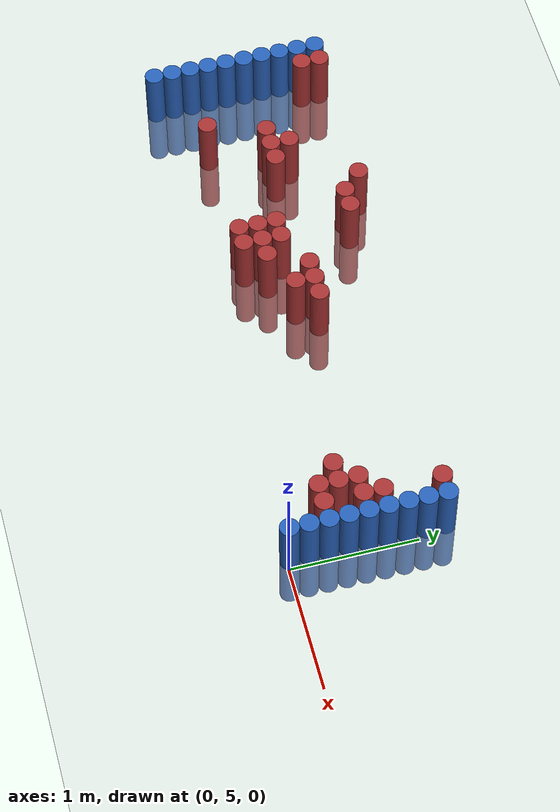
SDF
<sdf version="1.6">
 <world name="default">
  <model name="ground_plane">
   <static>1</static>
   <link name="link">
    <collision name="collision">
     <geometry><plane><normal>0 0 1</normal><size>100 100</size></plane></geometry>
     <surface><friction><ode><mu>100</mu><mu2>50</mu2></ode></friction></surface>
    </collision>
    <visual name="visual">
     <cast_shadows>0</cast_shadows>
     <geometry><plane><normal>0 0 1</normal><size>100 100</size></plane></geometry>
     <material>
      <script><uri>file://media/materials/scripts/gazebo.material</uri><name>Gazebo/Grey</name></script>
     </material>
    </visual>
   </link>
  </model>
  <model name="unit_cylinder_94">
   <static>1</static>
   <pose>-0.075000 5.025000 0.000000 0.000000 0.000000 0.000000</pose>
   <link name="link">
    <inertial>
     <mass>1</mass>
     <inertia><ixx>0.145833</ixx><ixy>0</ixy><ixz>0</ixz><iyy>0.145833</iyy><iyz>0</iyz><izz>0.125</izz></inertia>
    </inertial>
    <collision name="collision">
     <geometry><cylinder><radius>0.075000</radius><length>1</length></cylinder></geometry>
    </collision>
    <visual name="visual">
     <geometry><cylinder><radius>0.075000</radius><length>1</length></cylinder></geometry>
     <material>
      <ambient>0.152000 0.379000 0.720000 1</ambient>
      <diffuse>0.152000 0.379000 0.720000 1</diffuse>
     </material>
     <material>
      <script><name>Gazebo/Grey</name><uri>file://media/materials/scripts/gazebo.material</uri></script>
     </material>
    </visual>
   </link>
  </model>
  <model name="unit_cylinder_95">
   <static>1</static>
   <pose>-4.425000 5.025000 0.000000 0.000000 0.000000 0.000000</pose>
   <link name="link">
    <inertial>
     <mass>1</mass>
     <inertia><ixx>0.145833</ixx><ixy>0</ixy><ixz>0</ixz><iyy>0.145833</iyy><iyz>0</iyz><izz>0.125</izz></inertia>
    </inertial>
    <collision name="collision">
     <geometry><cylinder><radius>0.075000</radius><length>1</length></cylinder></geometry>
    </collision>
    <visual name="visual">
     <geometry><cylinder><radius>0.075000</radius><length>1</length></cylinder></geometry>
     <material>
      <ambient>0.152000 0.379000 0.720000 1</ambient>
      <diffuse>0.152000 0.379000 0.720000 1</diffuse>
     </material>
     <material>
      <script><name>Gazebo/Grey</name><uri>file://media/materials/scripts/gazebo.material</uri></script>
     </material>
    </visual>
   </link>
  </model>
  <model name="unit_cylinder_96">
   <static>1</static>
   <pose>-4.425000 5.175000 0.000000 0.000000 0.000000 0.000000</pose>
   <link name="link">
    <inertial>
     <mass>1</mass>
     <inertia><ixx>0.145833</ixx><ixy>0</ixy><ixz>0</ixz><iyy>0.145833</iyy><iyz>0</iyz><izz>0.125</izz></inertia>
    </inertial>
    <collision name="collision">
     <geometry><cylinder><radius>0.075000</radius><length>1</length></cylinder></geometry>
    </collision>
    <visual name="visual">
     <geometry><cylinder><radius>0.075000</radius><length>1</length></cylinder></geometry>
     <material>
      <ambient>0.152000 0.379000 0.720000 1</ambient>
      <diffuse>0.152000 0.379000 0.720000 1</diffuse>
     </material>
     <material>
      <script><name>Gazebo/Grey</name><uri>file://media/materials/scripts/gazebo.material</uri></script>
     </material>
    </visual>
   </link>
  </model>
  <model name="unit_cylinder_97">
   <static>1</static>
   <pose>-4.425000 5.325000 0.000000 0.000000 0.000000 0.000000</pose>
   <link name="link">
    <inertial>
     <mass>1</mass>
     <inertia><ixx>0.145833</ixx><ixy>0</ixy><ixz>0</ixz><iyy>0.145833</iyy><iyz>0</iyz><izz>0.125</izz></inertia>
    </inertial>
    <collision name="collision">
     <geometry><cylinder><radius>0.075000</radius><length>1</length></cylinder></geometry>
    </collision>
    <visual name="visual">
     <geometry><cylinder><radius>0.075000</radius><length>1</length></cylinder></geometry>
     <material>
      <ambient>0.152000 0.379000 0.720000 1</ambient>
      <diffuse>0.152000 0.379000 0.720000 1</diffuse>
     </material>
     <material>
      <script><name>Gazebo/Grey</name><uri>file://media/materials/scripts/gazebo.material</uri></script>
     </material>
    </visual>
   </link>
  </model>
  <model name="unit_cylinder_98">
   <static>1</static>
   <pose>-4.425000 5.475000 0.000000 0.000000 0.000000 0.000000</pose>
   <link name="link">
    <inertial>
     <mass>1</mass>
     <inertia><ixx>0.145833</ixx><ixy>0</ixy><ixz>0</ixz><iyy>0.145833</iyy><iyz>0</iyz><izz>0.125</izz></inertia>
    </inertial>
    <collision name="collision">
     <geometry><cylinder><radius>0.075000</radius><length>1</length></cylinder></geometry>
    </collision>
    <visual name="visual">
     <geometry><cylinder><radius>0.075000</radius><length>1</length></cylinder></geometry>
     <material>
      <ambient>0.152000 0.379000 0.720000 1</ambient>
      <diffuse>0.152000 0.379000 0.720000 1</diffuse>
     </material>
     <material>
      <script><name>Gazebo/Grey</name><uri>file://media/materials/scripts/gazebo.material</uri></script>
     </material>
    </visual>
   </link>
  </model>
  <model name="unit_cylinder_99">
   <static>1</static>
   <pose>-4.425000 5.625000 0.000000 0.000000 0.000000 0.000000</pose>
   <link name="link">
    <inertial>
     <mass>1</mass>
     <inertia><ixx>0.145833</ixx><ixy>0</ixy><ixz>0</ixz><iyy>0.145833</iyy><iyz>0</iyz><izz>0.125</izz></inertia>
    </inertial>
    <collision name="collision">
     <geometry><cylinder><radius>0.075000</radius><length>1</length></cylinder></geometry>
    </collision>
    <visual name="visual">
     <geometry><cylinder><radius>0.075000</radius><length>1</length></cylinder></geometry>
     <material>
      <ambient>0.152000 0.379000 0.720000 1</ambient>
      <diffuse>0.152000 0.379000 0.720000 1</diffuse>
     </material>
     <material>
      <script><name>Gazebo/Grey</name><uri>file://media/materials/scripts/gazebo.material</uri></script>
     </material>
    </visual>
   </link>
  </model>
  <model name="unit_cylinder_100">
   <static>1</static>
   <pose>-4.425000 5.775000 0.000000 0.000000 0.000000 0.000000</pose>
   <link name="link">
    <inertial>
     <mass>1</mass>
     <inertia><ixx>0.145833</ixx><ixy>0</ixy><ixz>0</ixz><iyy>0.145833</iyy><iyz>0</iyz><izz>0.125</izz></inertia>
    </inertial>
    <collision name="collision">
     <geometry><cylinder><radius>0.075000</radius><length>1</length></cylinder></geometry>
    </collision>
    <visual name="visual">
     <geometry><cylinder><radius>0.075000</radius><length>1</length></cylinder></geometry>
     <material>
      <ambient>0.152000 0.379000 0.720000 1</ambient>
      <diffuse>0.152000 0.379000 0.720000 1</diffuse>
     </material>
     <material>
      <script><name>Gazebo/Grey</name><uri>file://media/materials/scripts/gazebo.material</uri></script>
     </material>
    </visual>
   </link>
  </model>
  <model name="unit_cylinder_101">
   <static>1</static>
   <pose>-4.425000 5.925000 0.000000 0.000000 0.000000 0.000000</pose>
   <link name="link">
    <inertial>
     <mass>1</mass>
     <inertia><ixx>0.145833</ixx><ixy>0</ixy><ixz>0</ixz><iyy>0.145833</iyy><iyz>0</iyz><izz>0.125</izz></inertia>
    </inertial>
    <collision name="collision">
     <geometry><cylinder><radius>0.075000</radius><length>1</length></cylinder></geometry>
    </collision>
    <visual name="visual">
     <geometry><cylinder><radius>0.075000</radius><length>1</length></cylinder></geometry>
     <material>
      <ambient>0.152000 0.379000 0.720000 1</ambient>
      <diffuse>0.152000 0.379000 0.720000 1</diffuse>
     </material>
     <material>
      <script><name>Gazebo/Grey</name><uri>file://media/materials/scripts/gazebo.material</uri></script>
     </material>
    </visual>
   </link>
  </model>
  <model name="unit_cylinder_102">
   <static>1</static>
   <pose>-4.425000 6.075000 0.000000 0.000000 0.000000 0.000000</pose>
   <link name="link">
    <inertial>
     <mass>1</mass>
     <inertia><ixx>0.145833</ixx><ixy>0</ixy><ixz>0</ixz><iyy>0.145833</iyy><iyz>0</iyz><izz>0.125</izz></inertia>
    </inertial>
    <collision name="collision">
     <geometry><cylinder><radius>0.075000</radius><length>1</length></cylinder></geometry>
    </collision>
    <visual name="visual">
     <geometry><cylinder><radius>0.075000</radius><length>1</length></cylinder></geometry>
     <material>
      <ambient>0.152000 0.379000 0.720000 1</ambient>
      <diffuse>0.152000 0.379000 0.720000 1</diffuse>
     </material>
     <material>
      <script><name>Gazebo/Grey</name><uri>file://media/materials/scripts/gazebo.material</uri></script>
     </material>
    </visual>
   </link>
  </model>
  <model name="unit_cylinder_103">
   <static>1</static>
   <pose>-4.425000 6.225000 0.000000 0.000000 0.000000 0.000000</pose>
   <link name="link">
    <inertial>
     <mass>1</mass>
     <inertia><ixx>0.145833</ixx><ixy>0</ixy><ixz>0</ixz><iyy>0.145833</iyy><iyz>0</iyz><izz>0.125</izz></inertia>
    </inertial>
    <collision name="collision">
     <geometry><cylinder><radius>0.075000</radius><length>1</length></cylinder></geometry>
    </collision>
    <visual name="visual">
     <geometry><cylinder><radius>0.075000</radius><length>1</length></cylinder></geometry>
     <material>
      <ambient>0.152000 0.379000 0.720000 1</ambient>
      <diffuse>0.152000 0.379000 0.720000 1</diffuse>
     </material>
     <material>
      <script><name>Gazebo/Grey</name><uri>file://media/materials/scripts/gazebo.material</uri></script>
     </material>
    </visual>
   </link>
  </model>
  <model name="unit_cylinder_104">
   <static>1</static>
   <pose>-4.425000 6.375000 0.000000 0.000000 0.000000 0.000000</pose>
   <link name="link">
    <inertial>
     <mass>1</mass>
     <inertia><ixx>0.145833</ixx><ixy>0</ixy><ixz>0</ixz><iyy>0.145833</iyy><iyz>0</iyz><izz>0.125</izz></inertia>
    </inertial>
    <collision name="collision">
     <geometry><cylinder><radius>0.075000</radius><length>1</length></cylinder></geometry>
    </collision>
    <visual name="visual">
     <geometry><cylinder><radius>0.075000</radius><length>1</length></cylinder></geometry>
     <material>
      <ambient>0.152000 0.379000 0.720000 1</ambient>
      <diffuse>0.152000 0.379000 0.720000 1</diffuse>
     </material>
     <material>
      <script><name>Gazebo/Grey</name><uri>file://media/materials/scripts/gazebo.material</uri></script>
     </material>
    </visual>
   </link>
  </model>
  <model name="unit_cylinder_126">
   <static>1</static>
   <pose>-4.275000 6.225000 0.000000 0.000000 0.000000 0.000000</pose>
   <link name="link">
    <inertial>
     <mass>1</mass>
     <inertia><ixx>0.145833</ixx><ixy>0</ixy><ixz>0</ixz><iyy>0.145833</iyy><iyz>0</iyz><izz>0.125</izz></inertia>
    </inertial>
    <collision name="collision">
     <geometry><cylinder><radius>0.075000</radius><length>1</length></cylinder></geometry>
    </collision>
    <visual name="visual">
     <geometry><cylinder><radius>0.075000</radius><length>1</length></cylinder></geometry>
     <material>
      <ambient>0.648000 0.192000 0.192000 1</ambient>
      <diffuse>0.648000 0.192000 0.192000 1</diffuse>
     </material>
     <material>
      <script><name>Gazebo/Grey</name><uri>file://media/materials/scripts/gazebo.material</uri></script>
     </material>
    </visual>
   </link>
  </model>
  <model name="unit_cylinder_127">
   <static>1</static>
   <pose>-4.275000 6.375000 0.000000 0.000000 0.000000 0.000000</pose>
   <link name="link">
    <inertial>
     <mass>1</mass>
     <inertia><ixx>0.145833</ixx><ixy>0</ixy><ixz>0</ixz><iyy>0.145833</iyy><iyz>0</iyz><izz>0.125</izz></inertia>
    </inertial>
    <collision name="collision">
     <geometry><cylinder><radius>0.075000</radius><length>1</length></cylinder></geometry>
    </collision>
    <visual name="visual">
     <geometry><cylinder><radius>0.075000</radius><length>1</length></cylinder></geometry>
     <material>
      <ambient>0.648000 0.192000 0.192000 1</ambient>
      <diffuse>0.648000 0.192000 0.192000 1</diffuse>
     </material>
     <material>
      <script><name>Gazebo/Grey</name><uri>file://media/materials/scripts/gazebo.material</uri></script>
     </material>
    </visual>
   </link>
  </model>
  <model name="unit_cylinder_140">
   <static>1</static>
   <pose>-3.825000 5.325000 0.000000 0.000000 0.000000 0.000000</pose>
   <link name="link">
    <inertial>
     <mass>1</mass>
     <inertia><ixx>0.145833</ixx><ixy>0</ixy><ixz>0</ixz><iyy>0.145833</iyy><iyz>0</iyz><izz>0.125</izz></inertia>
    </inertial>
    <collision name="collision">
     <geometry><cylinder><radius>0.075000</radius><length>1</length></cylinder></geometry>
    </collision>
    <visual name="visual">
     <geometry><cylinder><radius>0.075000</radius><length>1</length></cylinder></geometry>
     <material>
      <ambient>0.648000 0.192000 0.192000 1</ambient>
      <diffuse>0.648000 0.192000 0.192000 1</diffuse>
     </material>
     <material>
      <script><name>Gazebo/Grey</name><uri>file://media/materials/scripts/gazebo.material</uri></script>
     </material>
    </visual>
   </link>
  </model>
  <model name="unit_cylinder_143">
   <static>1</static>
   <pose>-3.675000 5.775000 0.000000 0.000000 0.000000 0.000000</pose>
   <link name="link">
    <inertial>
     <mass>1</mass>
     <inertia><ixx>0.145833</ixx><ixy>0</ixy><ixz>0</ixz><iyy>0.145833</iyy><iyz>0</iyz><izz>0.125</izz></inertia>
    </inertial>
    <collision name="collision">
     <geometry><cylinder><radius>0.075000</radius><length>1</length></cylinder></geometry>
    </collision>
    <visual name="visual">
     <geometry><cylinder><radius>0.075000</radius><length>1</length></cylinder></geometry>
     <material>
      <ambient>0.648000 0.192000 0.192000 1</ambient>
      <diffuse>0.648000 0.192000 0.192000 1</diffuse>
     </material>
     <material>
      <script><name>Gazebo/Grey</name><uri>file://media/materials/scripts/gazebo.material</uri></script>
     </material>
    </visual>
   </link>
  </model>
  <model name="unit_cylinder_147">
   <static>1</static>
   <pose>-3.525000 5.775000 0.000000 0.000000 0.000000 0.000000</pose>
   <link name="link">
    <inertial>
     <mass>1</mass>
     <inertia><ixx>0.145833</ixx><ixy>0</ixy><ixz>0</ixz><iyy>0.145833</iyy><iyz>0</iyz><izz>0.125</izz></inertia>
    </inertial>
    <collision name="collision">
     <geometry><cylinder><radius>0.075000</radius><length>1</length></cylinder></geometry>
    </collision>
    <visual name="visual">
     <geometry><cylinder><radius>0.075000</radius><length>1</length></cylinder></geometry>
     <material>
      <ambient>0.648000 0.192000 0.192000 1</ambient>
      <diffuse>0.648000 0.192000 0.192000 1</diffuse>
     </material>
     <material>
      <script><name>Gazebo/Grey</name><uri>file://media/materials/scripts/gazebo.material</uri></script>
     </material>
    </visual>
   </link>
  </model>
  <model name="unit_cylinder_148">
   <static>1</static>
   <pose>-3.525000 5.925000 0.000000 0.000000 0.000000 0.000000</pose>
   <link name="link">
    <inertial>
     <mass>1</mass>
     <inertia><ixx>0.145833</ixx><ixy>0</ixy><ixz>0</ixz><iyy>0.145833</iyy><iyz>0</iyz><izz>0.125</izz></inertia>
    </inertial>
    <collision name="collision">
     <geometry><cylinder><radius>0.075000</radius><length>1</length></cylinder></geometry>
    </collision>
    <visual name="visual">
     <geometry><cylinder><radius>0.075000</radius><length>1</length></cylinder></geometry>
     <material>
      <ambient>0.648000 0.192000 0.192000 1</ambient>
      <diffuse>0.648000 0.192000 0.192000 1</diffuse>
     </material>
     <material>
      <script><name>Gazebo/Grey</name><uri>file://media/materials/scripts/gazebo.material</uri></script>
     </material>
    </visual>
   </link>
  </model>
  <model name="unit_cylinder_151">
   <static>1</static>
   <pose>-3.375000 5.775000 0.000000 0.000000 0.000000 0.000000</pose>
   <link name="link">
    <inertial>
     <mass>1</mass>
     <inertia><ixx>0.145833</ixx><ixy>0</ixy><ixz>0</ixz><iyy>0.145833</iyy><iyz>0</iyz><izz>0.125</izz></inertia>
    </inertial>
    <collision name="collision">
     <geometry><cylinder><radius>0.075000</radius><length>1</length></cylinder></geometry>
    </collision>
    <visual name="visual">
     <geometry><cylinder><radius>0.075000</radius><length>1</length></cylinder></geometry>
     <material>
      <ambient>0.648000 0.192000 0.192000 1</ambient>
      <diffuse>0.648000 0.192000 0.192000 1</diffuse>
     </material>
     <material>
      <script><name>Gazebo/Grey</name><uri>file://media/materials/scripts/gazebo.material</uri></script>
     </material>
    </visual>
   </link>
  </model>
  <model name="unit_cylinder_154">
   <static>1</static>
   <pose>-3.075000 6.375000 0.000000 0.000000 0.000000 0.000000</pose>
   <link name="link">
    <inertial>
     <mass>1</mass>
     <inertia><ixx>0.145833</ixx><ixy>0</ixy><ixz>0</ixz><iyy>0.145833</iyy><iyz>0</iyz><izz>0.125</izz></inertia>
    </inertial>
    <collision name="collision">
     <geometry><cylinder><radius>0.075000</radius><length>1</length></cylinder></geometry>
    </collision>
    <visual name="visual">
     <geometry><cylinder><radius>0.075000</radius><length>1</length></cylinder></geometry>
     <material>
      <ambient>0.648000 0.192000 0.192000 1</ambient>
      <diffuse>0.648000 0.192000 0.192000 1</diffuse>
     </material>
     <material>
      <script><name>Gazebo/Grey</name><uri>file://media/materials/scripts/gazebo.material</uri></script>
     </material>
    </visual>
   </link>
  </model>
  <model name="unit_cylinder_156">
   <static>1</static>
   <pose>-2.925000 6.225000 0.000000 0.000000 0.000000 0.000000</pose>
   <link name="link">
    <inertial>
     <mass>1</mass>
     <inertia><ixx>0.145833</ixx><ixy>0</ixy><ixz>0</ixz><iyy>0.145833</iyy><iyz>0</iyz><izz>0.125</izz></inertia>
    </inertial>
    <collision name="collision">
     <geometry><cylinder><radius>0.075000</radius><length>1</length></cylinder></geometry>
    </collision>
    <visual name="visual">
     <geometry><cylinder><radius>0.075000</radius><length>1</length></cylinder></geometry>
     <material>
      <ambient>0.648000 0.192000 0.192000 1</ambient>
      <diffuse>0.648000 0.192000 0.192000 1</diffuse>
     </material>
     <material>
      <script><name>Gazebo/Grey</name><uri>file://media/materials/scripts/gazebo.material</uri></script>
     </material>
    </visual>
   </link>
  </model>
  <model name="unit_cylinder_158">
   <static>1</static>
   <pose>-2.775000 5.325000 0.000000 0.000000 0.000000 0.000000</pose>
   <link name="link">
    <inertial>
     <mass>1</mass>
     <inertia><ixx>0.145833</ixx><ixy>0</ixy><ixz>0</ixz><iyy>0.145833</iyy><iyz>0</iyz><izz>0.125</izz></inertia>
    </inertial>
    <collision name="collision">
     <geometry><cylinder><radius>0.075000</radius><length>1</length></cylinder></geometry>
    </collision>
    <visual name="visual">
     <geometry><cylinder><radius>0.075000</radius><length>1</length></cylinder></geometry>
     <material>
      <ambient>0.648000 0.192000 0.192000 1</ambient>
      <diffuse>0.648000 0.192000 0.192000 1</diffuse>
     </material>
     <material>
      <script><name>Gazebo/Grey</name><uri>file://media/materials/scripts/gazebo.material</uri></script>
     </material>
    </visual>
   </link>
  </model>
  <model name="unit_cylinder_159">
   <static>1</static>
   <pose>-2.775000 5.475000 0.000000 0.000000 0.000000 0.000000</pose>
   <link name="link">
    <inertial>
     <mass>1</mass>
     <inertia><ixx>0.145833</ixx><ixy>0</ixy><ixz>0</ixz><iyy>0.145833</iyy><iyz>0</iyz><izz>0.125</izz></inertia>
    </inertial>
    <collision name="collision">
     <geometry><cylinder><radius>0.075000</radius><length>1</length></cylinder></geometry>
    </collision>
    <visual name="visual">
     <geometry><cylinder><radius>0.075000</radius><length>1</length></cylinder></geometry>
     <material>
      <ambient>0.648000 0.192000 0.192000 1</ambient>
      <diffuse>0.648000 0.192000 0.192000 1</diffuse>
     </material>
     <material>
      <script><name>Gazebo/Grey</name><uri>file://media/materials/scripts/gazebo.material</uri></script>
     </material>
    </visual>
   </link>
  </model>
  <model name="unit_cylinder_160">
   <static>1</static>
   <pose>-2.775000 5.625000 0.000000 0.000000 0.000000 0.000000</pose>
   <link name="link">
    <inertial>
     <mass>1</mass>
     <inertia><ixx>0.145833</ixx><ixy>0</ixy><ixz>0</ixz><iyy>0.145833</iyy><iyz>0</iyz><izz>0.125</izz></inertia>
    </inertial>
    <collision name="collision">
     <geometry><cylinder><radius>0.075000</radius><length>1</length></cylinder></geometry>
    </collision>
    <visual name="visual">
     <geometry><cylinder><radius>0.075000</radius><length>1</length></cylinder></geometry>
     <material>
      <ambient>0.648000 0.192000 0.192000 1</ambient>
      <diffuse>0.648000 0.192000 0.192000 1</diffuse>
     </material>
     <material>
      <script><name>Gazebo/Grey</name><uri>file://media/materials/scripts/gazebo.material</uri></script>
     </material>
    </visual>
   </link>
  </model>
  <model name="unit_cylinder_161">
   <static>1</static>
   <pose>-2.775000 6.225000 0.000000 0.000000 0.000000 0.000000</pose>
   <link name="link">
    <inertial>
     <mass>1</mass>
     <inertia><ixx>0.145833</ixx><ixy>0</ixy><ixz>0</ixz><iyy>0.145833</iyy><iyz>0</iyz><izz>0.125</izz></inertia>
    </inertial>
    <collision name="collision">
     <geometry><cylinder><radius>0.075000</radius><length>1</length></cylinder></geometry>
    </collision>
    <visual name="visual">
     <geometry><cylinder><radius>0.075000</radius><length>1</length></cylinder></geometry>
     <material>
      <ambient>0.648000 0.192000 0.192000 1</ambient>
      <diffuse>0.648000 0.192000 0.192000 1</diffuse>
     </material>
     <material>
      <script><name>Gazebo/Grey</name><uri>file://media/materials/scripts/gazebo.material</uri></script>
     </material>
    </visual>
   </link>
  </model>
  <model name="unit_cylinder_162">
   <static>1</static>
   <pose>-2.625000 5.325000 0.000000 0.000000 0.000000 0.000000</pose>
   <link name="link">
    <inertial>
     <mass>1</mass>
     <inertia><ixx>0.145833</ixx><ixy>0</ixy><ixz>0</ixz><iyy>0.145833</iyy><iyz>0</iyz><izz>0.125</izz></inertia>
    </inertial>
    <collision name="collision">
     <geometry><cylinder><radius>0.075000</radius><length>1</length></cylinder></geometry>
    </collision>
    <visual name="visual">
     <geometry><cylinder><radius>0.075000</radius><length>1</length></cylinder></geometry>
     <material>
      <ambient>0.648000 0.192000 0.192000 1</ambient>
      <diffuse>0.648000 0.192000 0.192000 1</diffuse>
     </material>
     <material>
      <script><name>Gazebo/Grey</name><uri>file://media/materials/scripts/gazebo.material</uri></script>
     </material>
    </visual>
   </link>
  </model>
  <model name="unit_cylinder_163">
   <static>1</static>
   <pose>-2.625000 5.475000 0.000000 0.000000 0.000000 0.000000</pose>
   <link name="link">
    <inertial>
     <mass>1</mass>
     <inertia><ixx>0.145833</ixx><ixy>0</ixy><ixz>0</ixz><iyy>0.145833</iyy><iyz>0</iyz><izz>0.125</izz></inertia>
    </inertial>
    <collision name="collision">
     <geometry><cylinder><radius>0.075000</radius><length>1</length></cylinder></geometry>
    </collision>
    <visual name="visual">
     <geometry><cylinder><radius>0.075000</radius><length>1</length></cylinder></geometry>
     <material>
      <ambient>0.648000 0.192000 0.192000 1</ambient>
      <diffuse>0.648000 0.192000 0.192000 1</diffuse>
     </material>
     <material>
      <script><name>Gazebo/Grey</name><uri>file://media/materials/scripts/gazebo.material</uri></script>
     </material>
    </visual>
   </link>
  </model>
  <model name="unit_cylinder_164">
   <static>1</static>
   <pose>-2.625000 5.625000 0.000000 0.000000 0.000000 0.000000</pose>
   <link name="link">
    <inertial>
     <mass>1</mass>
     <inertia><ixx>0.145833</ixx><ixy>0</ixy><ixz>0</ixz><iyy>0.145833</iyy><iyz>0</iyz><izz>0.125</izz></inertia>
    </inertial>
    <collision name="collision">
     <geometry><cylinder><radius>0.075000</radius><length>1</length></cylinder></geometry>
    </collision>
    <visual name="visual">
     <geometry><cylinder><radius>0.075000</radius><length>1</length></cylinder></geometry>
     <material>
      <ambient>0.648000 0.192000 0.192000 1</ambient>
      <diffuse>0.648000 0.192000 0.192000 1</diffuse>
     </material>
     <material>
      <script><name>Gazebo/Grey</name><uri>file://media/materials/scripts/gazebo.material</uri></script>
     </material>
    </visual>
   </link>
  </model>
  <model name="unit_cylinder_165">
   <static>1</static>
   <pose>-2.475000 5.475000 0.000000 0.000000 0.000000 0.000000</pose>
   <link name="link">
    <inertial>
     <mass>1</mass>
     <inertia><ixx>0.145833</ixx><ixy>0</ixy><ixz>0</ixz><iyy>0.145833</iyy><iyz>0</iyz><izz>0.125</izz></inertia>
    </inertial>
    <collision name="collision">
     <geometry><cylinder><radius>0.075000</radius><length>1</length></cylinder></geometry>
    </collision>
    <visual name="visual">
     <geometry><cylinder><radius>0.075000</radius><length>1</length></cylinder></geometry>
     <material>
      <ambient>0.648000 0.192000 0.192000 1</ambient>
      <diffuse>0.648000 0.192000 0.192000 1</diffuse>
     </material>
     <material>
      <script><name>Gazebo/Grey</name><uri>file://media/materials/scripts/gazebo.material</uri></script>
     </material>
    </visual>
   </link>
  </model>
  <model name="unit_cylinder_169">
   <static>1</static>
   <pose>-2.325000 5.775000 0.000000 0.000000 0.000000 0.000000</pose>
   <link name="link">
    <inertial>
     <mass>1</mass>
     <inertia><ixx>0.145833</ixx><ixy>0</ixy><ixz>0</ixz><iyy>0.145833</iyy><iyz>0</iyz><izz>0.125</izz></inertia>
    </inertial>
    <collision name="collision">
     <geometry><cylinder><radius>0.075000</radius><length>1</length></cylinder></geometry>
    </collision>
    <visual name="visual">
     <geometry><cylinder><radius>0.075000</radius><length>1</length></cylinder></geometry>
     <material>
      <ambient>0.648000 0.192000 0.192000 1</ambient>
      <diffuse>0.648000 0.192000 0.192000 1</diffuse>
     </material>
     <material>
      <script><name>Gazebo/Grey</name><uri>file://media/materials/scripts/gazebo.material</uri></script>
     </material>
    </visual>
   </link>
  </model>
  <model name="unit_cylinder_173">
   <static>1</static>
   <pose>-2.175000 5.625000 0.000000 0.000000 0.000000 0.000000</pose>
   <link name="link">
    <inertial>
     <mass>1</mass>
     <inertia><ixx>0.145833</ixx><ixy>0</ixy><ixz>0</ixz><iyy>0.145833</iyy><iyz>0</iyz><izz>0.125</izz></inertia>
    </inertial>
    <collision name="collision">
     <geometry><cylinder><radius>0.075000</radius><length>1</length></cylinder></geometry>
    </collision>
    <visual name="visual">
     <geometry><cylinder><radius>0.075000</radius><length>1</length></cylinder></geometry>
     <material>
      <ambient>0.648000 0.192000 0.192000 1</ambient>
      <diffuse>0.648000 0.192000 0.192000 1</diffuse>
     </material>
     <material>
      <script><name>Gazebo/Grey</name><uri>file://media/materials/scripts/gazebo.material</uri></script>
     </material>
    </visual>
   </link>
  </model>
  <model name="unit_cylinder_174">
   <static>1</static>
   <pose>-2.175000 5.775000 0.000000 0.000000 0.000000 0.000000</pose>
   <link name="link">
    <inertial>
     <mass>1</mass>
     <inertia><ixx>0.145833</ixx><ixy>0</ixy><ixz>0</ixz><iyy>0.145833</iyy><iyz>0</iyz><izz>0.125</izz></inertia>
    </inertial>
    <collision name="collision">
     <geometry><cylinder><radius>0.075000</radius><length>1</length></cylinder></geometry>
    </collision>
    <visual name="visual">
     <geometry><cylinder><radius>0.075000</radius><length>1</length></cylinder></geometry>
     <material>
      <ambient>0.648000 0.192000 0.192000 1</ambient>
      <diffuse>0.648000 0.192000 0.192000 1</diffuse>
     </material>
     <material>
      <script><name>Gazebo/Grey</name><uri>file://media/materials/scripts/gazebo.material</uri></script>
     </material>
    </visual>
   </link>
  </model>
  <model name="unit_cylinder_177">
   <static>1</static>
   <pose>-2.025000 5.775000 0.000000 0.000000 0.000000 0.000000</pose>
   <link name="link">
    <inertial>
     <mass>1</mass>
     <inertia><ixx>0.145833</ixx><ixy>0</ixy><ixz>0</ixz><iyy>0.145833</iyy><iyz>0</iyz><izz>0.125</izz></inertia>
    </inertial>
    <collision name="collision">
     <geometry><cylinder><radius>0.075000</radius><length>1</length></cylinder></geometry>
    </collision>
    <visual name="visual">
     <geometry><cylinder><radius>0.075000</radius><length>1</length></cylinder></geometry>
     <material>
      <ambient>0.648000 0.192000 0.192000 1</ambient>
      <diffuse>0.648000 0.192000 0.192000 1</diffuse>
     </material>
     <material>
      <script><name>Gazebo/Grey</name><uri>file://media/materials/scripts/gazebo.material</uri></script>
     </material>
    </visual>
   </link>
  </model>
  <model name="unit_cylinder_192">
   <static>1</static>
   <pose>-0.525000 5.475000 0.000000 0.000000 0.000000 0.000000</pose>
   <link name="link">
    <inertial>
     <mass>1</mass>
     <inertia><ixx>0.145833</ixx><ixy>0</ixy><ixz>0</ixz><iyy>0.145833</iyy><iyz>0</iyz><izz>0.125</izz></inertia>
    </inertial>
    <collision name="collision">
     <geometry><cylinder><radius>0.075000</radius><length>1</length></cylinder></geometry>
    </collision>
    <visual name="visual">
     <geometry><cylinder><radius>0.075000</radius><length>1</length></cylinder></geometry>
     <material>
      <ambient>0.648000 0.192000 0.192000 1</ambient>
      <diffuse>0.648000 0.192000 0.192000 1</diffuse>
     </material>
     <material>
      <script><name>Gazebo/Grey</name><uri>file://media/materials/scripts/gazebo.material</uri></script>
     </material>
    </visual>
   </link>
  </model>
  <model name="unit_cylinder_195">
   <static>1</static>
   <pose>-0.375000 5.325000 0.000000 0.000000 0.000000 0.000000</pose>
   <link name="link">
    <inertial>
     <mass>1</mass>
     <inertia><ixx>0.145833</ixx><ixy>0</ixy><ixz>0</ixz><iyy>0.145833</iyy><iyz>0</iyz><izz>0.125</izz></inertia>
    </inertial>
    <collision name="collision">
     <geometry><cylinder><radius>0.075000</radius><length>1</length></cylinder></geometry>
    </collision>
    <visual name="visual">
     <geometry><cylinder><radius>0.075000</radius><length>1</length></cylinder></geometry>
     <material>
      <ambient>0.648000 0.192000 0.192000 1</ambient>
      <diffuse>0.648000 0.192000 0.192000 1</diffuse>
     </material>
     <material>
      <script><name>Gazebo/Grey</name><uri>file://media/materials/scripts/gazebo.material</uri></script>
     </material>
    </visual>
   </link>
  </model>
  <model name="unit_cylinder_196">
   <static>1</static>
   <pose>-0.375000 5.475000 0.000000 0.000000 0.000000 0.000000</pose>
   <link name="link">
    <inertial>
     <mass>1</mass>
     <inertia><ixx>0.145833</ixx><ixy>0</ixy><ixz>0</ixz><iyy>0.145833</iyy><iyz>0</iyz><izz>0.125</izz></inertia>
    </inertial>
    <collision name="collision">
     <geometry><cylinder><radius>0.075000</radius><length>1</length></cylinder></geometry>
    </collision>
    <visual name="visual">
     <geometry><cylinder><radius>0.075000</radius><length>1</length></cylinder></geometry>
     <material>
      <ambient>0.648000 0.192000 0.192000 1</ambient>
      <diffuse>0.648000 0.192000 0.192000 1</diffuse>
     </material>
     <material>
      <script><name>Gazebo/Grey</name><uri>file://media/materials/scripts/gazebo.material</uri></script>
     </material>
    </visual>
   </link>
  </model>
  <model name="unit_cylinder_197">
   <static>1</static>
   <pose>-0.375000 5.625000 0.000000 0.000000 0.000000 0.000000</pose>
   <link name="link">
    <inertial>
     <mass>1</mass>
     <inertia><ixx>0.145833</ixx><ixy>0</ixy><ixz>0</ixz><iyy>0.145833</iyy><iyz>0</iyz><izz>0.125</izz></inertia>
    </inertial>
    <collision name="collision">
     <geometry><cylinder><radius>0.075000</radius><length>1</length></cylinder></geometry>
    </collision>
    <visual name="visual">
     <geometry><cylinder><radius>0.075000</radius><length>1</length></cylinder></geometry>
     <material>
      <ambient>0.648000 0.192000 0.192000 1</ambient>
      <diffuse>0.648000 0.192000 0.192000 1</diffuse>
     </material>
     <material>
      <script><name>Gazebo/Grey</name><uri>file://media/materials/scripts/gazebo.material</uri></script>
     </material>
    </visual>
   </link>
  </model>
  <model name="unit_cylinder_198">
   <static>1</static>
   <pose>-0.225000 5.325000 0.000000 0.000000 0.000000 0.000000</pose>
   <link name="link">
    <inertial>
     <mass>1</mass>
     <inertia><ixx>0.145833</ixx><ixy>0</ixy><ixz>0</ixz><iyy>0.145833</iyy><iyz>0</iyz><izz>0.125</izz></inertia>
    </inertial>
    <collision name="collision">
     <geometry><cylinder><radius>0.075000</radius><length>1</length></cylinder></geometry>
    </collision>
    <visual name="visual">
     <geometry><cylinder><radius>0.075000</radius><length>1</length></cylinder></geometry>
     <material>
      <ambient>0.648000 0.192000 0.192000 1</ambient>
      <diffuse>0.648000 0.192000 0.192000 1</diffuse>
     </material>
     <material>
      <script><name>Gazebo/Grey</name><uri>file://media/materials/scripts/gazebo.material</uri></script>
     </material>
    </visual>
   </link>
  </model>
  <model name="unit_cylinder_199">
   <static>1</static>
   <pose>-0.225000 5.625000 0.000000 0.000000 0.000000 0.000000</pose>
   <link name="link">
    <inertial>
     <mass>1</mass>
     <inertia><ixx>0.145833</ixx><ixy>0</ixy><ixz>0</ixz><iyy>0.145833</iyy><iyz>0</iyz><izz>0.125</izz></inertia>
    </inertial>
    <collision name="collision">
     <geometry><cylinder><radius>0.075000</radius><length>1</length></cylinder></geometry>
    </collision>
    <visual name="visual">
     <geometry><cylinder><radius>0.075000</radius><length>1</length></cylinder></geometry>
     <material>
      <ambient>0.648000 0.192000 0.192000 1</ambient>
      <diffuse>0.648000 0.192000 0.192000 1</diffuse>
     </material>
     <material>
      <script><name>Gazebo/Grey</name><uri>file://media/materials/scripts/gazebo.material</uri></script>
     </material>
    </visual>
   </link>
  </model>
  <model name="unit_cylinder_200">
   <static>1</static>
   <pose>-0.225000 5.775000 0.000000 0.000000 0.000000 0.000000</pose>
   <link name="link">
    <inertial>
     <mass>1</mass>
     <inertia><ixx>0.145833</ixx><ixy>0</ixy><ixz>0</ixz><iyy>0.145833</iyy><iyz>0</iyz><izz>0.125</izz></inertia>
    </inertial>
    <collision name="collision">
     <geometry><cylinder><radius>0.075000</radius><length>1</length></cylinder></geometry>
    </collision>
    <visual name="visual">
     <geometry><cylinder><radius>0.075000</radius><length>1</length></cylinder></geometry>
     <material>
      <ambient>0.648000 0.192000 0.192000 1</ambient>
      <diffuse>0.648000 0.192000 0.192000 1</diffuse>
     </material>
     <material>
      <script><name>Gazebo/Grey</name><uri>file://media/materials/scripts/gazebo.material</uri></script>
     </material>
    </visual>
   </link>
  </model>
  <model name="unit_cylinder_201">
   <static>1</static>
   <pose>-0.225000 6.225000 0.000000 0.000000 0.000000 0.000000</pose>
   <link name="link">
    <inertial>
     <mass>1</mass>
     <inertia><ixx>0.145833</ixx><ixy>0</ixy><ixz>0</ixz><iyy>0.145833</iyy><iyz>0</iyz><izz>0.125</izz></inertia>
    </inertial>
    <collision name="collision">
     <geometry><cylinder><radius>0.075000</radius><length>1</length></cylinder></geometry>
    </collision>
    <visual name="visual">
     <geometry><cylinder><radius>0.075000</radius><length>1</length></cylinder></geometry>
     <material>
      <ambient>0.648000 0.192000 0.192000 1</ambient>
      <diffuse>0.648000 0.192000 0.192000 1</diffuse>
     </material>
     <material>
      <script><name>Gazebo/Grey</name><uri>file://media/materials/scripts/gazebo.material</uri></script>
     </material>
    </visual>
   </link>
  </model>
  <model name="unit_cylinder_207">
   <static>1</static>
   <pose>-0.075000 5.175000 0.000000 0.000000 0.000000 0.000000</pose>
   <link name="link">
    <inertial>
     <mass>1</mass>
     <inertia><ixx>0.145833</ixx><ixy>0</ixy><ixz>0</ixz><iyy>0.145833</iyy><iyz>0</iyz><izz>0.125</izz></inertia>
    </inertial>
    <collision name="collision">
     <geometry><cylinder><radius>0.075000</radius><length>1</length></cylinder></geometry>
    </collision>
    <visual name="visual">
     <geometry><cylinder><radius>0.075000</radius><length>1</length></cylinder></geometry>
     <material>
      <ambient>0.152000 0.379000 0.720000 1</ambient>
      <diffuse>0.152000 0.379000 0.720000 1</diffuse>
     </material>
     <material>
      <script><name>Gazebo/Grey</name><uri>file://media/materials/scripts/gazebo.material</uri></script>
     </material>
    </visual>
   </link>
  </model>
  <model name="unit_cylinder_208">
   <static>1</static>
   <pose>-0.075000 5.325000 0.000000 0.000000 0.000000 0.000000</pose>
   <link name="link">
    <inertial>
     <mass>1</mass>
     <inertia><ixx>0.145833</ixx><ixy>0</ixy><ixz>0</ixz><iyy>0.145833</iyy><iyz>0</iyz><izz>0.125</izz></inertia>
    </inertial>
    <collision name="collision">
     <geometry><cylinder><radius>0.075000</radius><length>1</length></cylinder></geometry>
    </collision>
    <visual name="visual">
     <geometry><cylinder><radius>0.075000</radius><length>1</length></cylinder></geometry>
     <material>
      <ambient>0.152000 0.379000 0.720000 1</ambient>
      <diffuse>0.152000 0.379000 0.720000 1</diffuse>
     </material>
     <material>
      <script><name>Gazebo/Grey</name><uri>file://media/materials/scripts/gazebo.material</uri></script>
     </material>
    </visual>
   </link>
  </model>
  <model name="unit_cylinder_209">
   <static>1</static>
   <pose>-0.075000 5.475000 0.000000 0.000000 0.000000 0.000000</pose>
   <link name="link">
    <inertial>
     <mass>1</mass>
     <inertia><ixx>0.145833</ixx><ixy>0</ixy><ixz>0</ixz><iyy>0.145833</iyy><iyz>0</iyz><izz>0.125</izz></inertia>
    </inertial>
    <collision name="collision">
     <geometry><cylinder><radius>0.075000</radius><length>1</length></cylinder></geometry>
    </collision>
    <visual name="visual">
     <geometry><cylinder><radius>0.075000</radius><length>1</length></cylinder></geometry>
     <material>
      <ambient>0.152000 0.379000 0.720000 1</ambient>
      <diffuse>0.152000 0.379000 0.720000 1</diffuse>
     </material>
     <material>
      <script><name>Gazebo/Grey</name><uri>file://media/materials/scripts/gazebo.material</uri></script>
     </material>
    </visual>
   </link>
  </model>
  <model name="unit_cylinder_210">
   <static>1</static>
   <pose>-0.075000 5.625000 0.000000 0.000000 0.000000 0.000000</pose>
   <link name="link">
    <inertial>
     <mass>1</mass>
     <inertia><ixx>0.145833</ixx><ixy>0</ixy><ixz>0</ixz><iyy>0.145833</iyy><iyz>0</iyz><izz>0.125</izz></inertia>
    </inertial>
    <collision name="collision">
     <geometry><cylinder><radius>0.075000</radius><length>1</length></cylinder></geometry>
    </collision>
    <visual name="visual">
     <geometry><cylinder><radius>0.075000</radius><length>1</length></cylinder></geometry>
     <material>
      <ambient>0.152000 0.379000 0.720000 1</ambient>
      <diffuse>0.152000 0.379000 0.720000 1</diffuse>
     </material>
     <material>
      <script><name>Gazebo/Grey</name><uri>file://media/materials/scripts/gazebo.material</uri></script>
     </material>
    </visual>
   </link>
  </model>
  <model name="unit_cylinder_211">
   <static>1</static>
   <pose>-0.075000 5.775000 0.000000 0.000000 0.000000 0.000000</pose>
   <link name="link">
    <inertial>
     <mass>1</mass>
     <inertia><ixx>0.145833</ixx><ixy>0</ixy><ixz>0</ixz><iyy>0.145833</iyy><iyz>0</iyz><izz>0.125</izz></inertia>
    </inertial>
    <collision name="collision">
     <geometry><cylinder><radius>0.075000</radius><length>1</length></cylinder></geometry>
    </collision>
    <visual name="visual">
     <geometry><cylinder><radius>0.075000</radius><length>1</length></cylinder></geometry>
     <material>
      <ambient>0.152000 0.379000 0.720000 1</ambient>
      <diffuse>0.152000 0.379000 0.720000 1</diffuse>
     </material>
     <material>
      <script><name>Gazebo/Grey</name><uri>file://media/materials/scripts/gazebo.material</uri></script>
     </material>
    </visual>
   </link>
  </model>
  <model name="unit_cylinder_212">
   <static>1</static>
   <pose>-0.075000 5.925000 0.000000 0.000000 0.000000 0.000000</pose>
   <link name="link">
    <inertial>
     <mass>1</mass>
     <inertia><ixx>0.145833</ixx><ixy>0</ixy><ixz>0</ixz><iyy>0.145833</iyy><iyz>0</iyz><izz>0.125</izz></inertia>
    </inertial>
    <collision name="collision">
     <geometry><cylinder><radius>0.075000</radius><length>1</length></cylinder></geometry>
    </collision>
    <visual name="visual">
     <geometry><cylinder><radius>0.075000</radius><length>1</length></cylinder></geometry>
     <material>
      <ambient>0.152000 0.379000 0.720000 1</ambient>
      <diffuse>0.152000 0.379000 0.720000 1</diffuse>
     </material>
     <material>
      <script><name>Gazebo/Grey</name><uri>file://media/materials/scripts/gazebo.material</uri></script>
     </material>
    </visual>
   </link>
  </model>
  <model name="unit_cylinder_213">
   <static>1</static>
   <pose>-0.075000 6.075000 0.000000 0.000000 0.000000 0.000000</pose>
   <link name="link">
    <inertial>
     <mass>1</mass>
     <inertia><ixx>0.145833</ixx><ixy>0</ixy><ixz>0</ixz><iyy>0.145833</iyy><iyz>0</iyz><izz>0.125</izz></inertia>
    </inertial>
    <collision name="collision">
     <geometry><cylinder><radius>0.075000</radius><length>1</length></cylinder></geometry>
    </collision>
    <visual name="visual">
     <geometry><cylinder><radius>0.075000</radius><length>1</length></cylinder></geometry>
     <material>
      <ambient>0.152000 0.379000 0.720000 1</ambient>
      <diffuse>0.152000 0.379000 0.720000 1</diffuse>
     </material>
     <material>
      <script><name>Gazebo/Grey</name><uri>file://media/materials/scripts/gazebo.material</uri></script>
     </material>
    </visual>
   </link>
  </model>
  <model name="unit_cylinder_214">
   <static>1</static>
   <pose>-0.075000 6.225000 0.000000 0.000000 0.000000 0.000000</pose>
   <link name="link">
    <inertial>
     <mass>1</mass>
     <inertia><ixx>0.145833</ixx><ixy>0</ixy><ixz>0</ixz><iyy>0.145833</iyy><iyz>0</iyz><izz>0.125</izz></inertia>
    </inertial>
    <collision name="collision">
     <geometry><cylinder><radius>0.075000</radius><length>1</length></cylinder></geometry>
    </collision>
    <visual name="visual">
     <geometry><cylinder><radius>0.075000</radius><length>1</length></cylinder></geometry>
     <material>
      <ambient>0.152000 0.379000 0.720000 1</ambient>
      <diffuse>0.152000 0.379000 0.720000 1</diffuse>
     </material>
     <material>
      <script><name>Gazebo/Grey</name><uri>file://media/materials/scripts/gazebo.material</uri></script>
     </material>
    </visual>
   </link>
  </model>
 </world>
</sdf>
